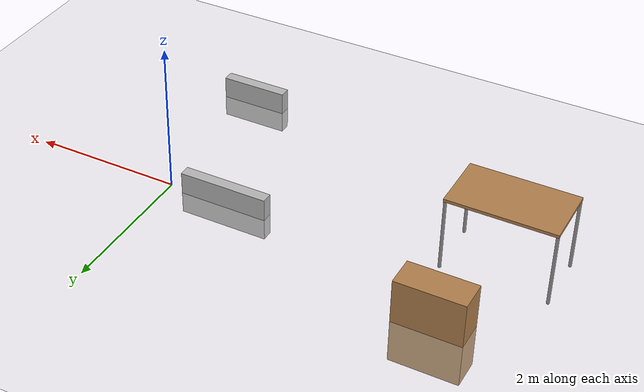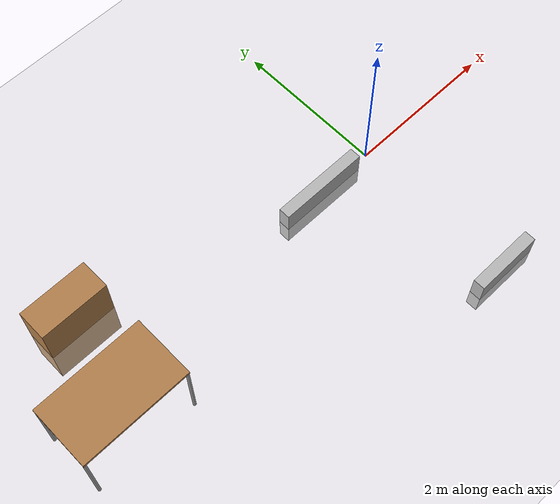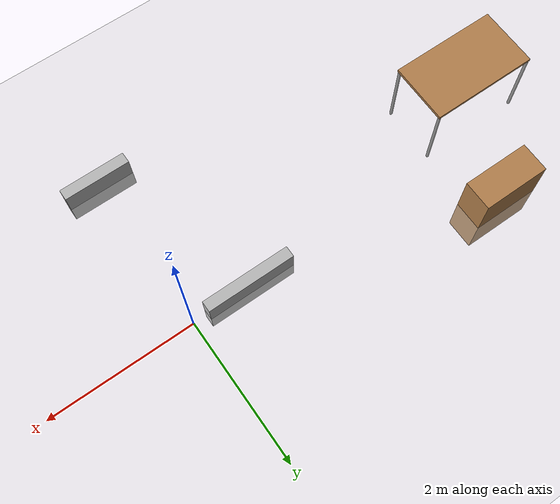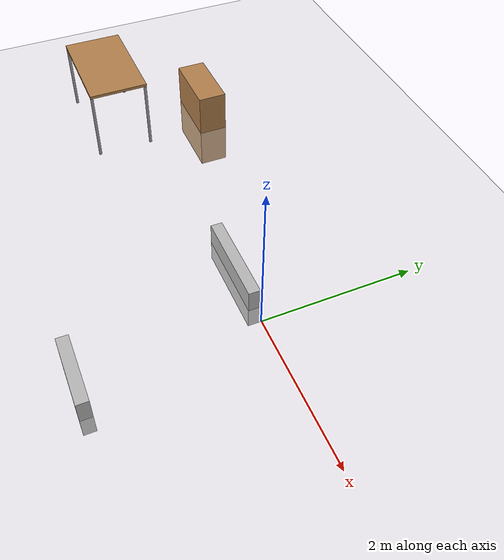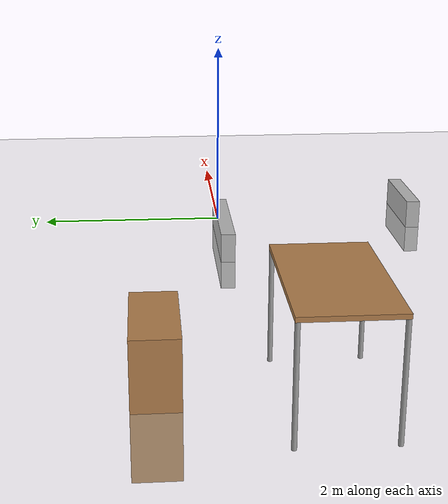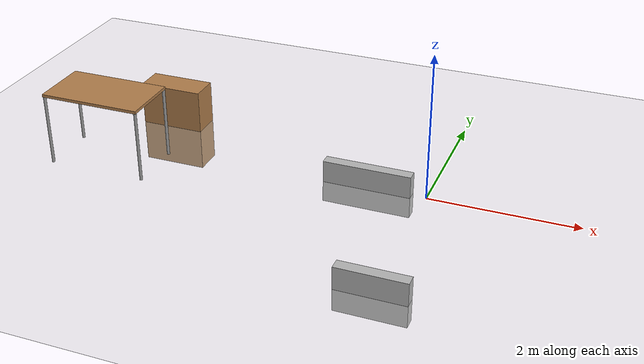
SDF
<sdf version="1.6">
 <world name="default">
  <model name="ground_plane">
   <static>1</static>
   <link name="link">
    <collision name="collision">
     <geometry><plane><normal>0 0 1</normal><size>100 100</size></plane></geometry>
     <surface><friction><ode><mu>100</mu><mu2>50</mu2></ode></friction></surface>
    </collision>
    <visual name="visual">
     <cast_shadows>0</cast_shadows>
     <geometry><plane><normal>0 0 1</normal><size>100 100</size></plane></geometry>
     <material>
      <script><uri>file://media/materials/scripts/gazebo.material</uri><name>Gazebo/Grey</name></script>
     </material>
    </visual>
   </link>
  </model>
  <model name="table">
   <static>0</static>
   <link name="link">
    <collision name="surface">
     <pose>0 0 1 0 -0 0</pose>
     <geometry><box><size>1.5 0.8 0.03</size></box></geometry>
     <surface><friction><ode><mu>0.6</mu><mu2>0.6</mu2></ode></friction></surface>
    </collision>
    <visual name="visual1">
     <pose>0 0 1 0 -0 0</pose>
     <geometry><box><size>1.4 0.8 0.04</size></box></geometry>
     <material>
      <script><uri>file://media/materials/scripts/gazebo.material</uri><name>Gazebo/Wood</name></script>
     </material>
    </visual>
    <collision name="front_left_leg">
     <pose>0.68 0.38 0.5 0 -0 0</pose>
     <geometry><cylinder><radius>0.02</radius><length>1</length></cylinder></geometry>
    </collision>
    <visual name="front_left_leg">
     <pose>0.68 0.38 0.5 0 -0 0</pose>
     <geometry><cylinder><radius>0.02</radius><length>1</length></cylinder></geometry>
     <material>
      <script><uri>file://media/materials/scripts/gazebo.material</uri><name>Gazebo/Grey</name></script>
     </material>
    </visual>
    <collision name="front_right_leg">
     <pose>0.68 -0.38 0.5 0 -0 0</pose>
     <geometry><cylinder><radius>0.02</radius><length>1</length></cylinder></geometry>
    </collision>
    <visual name="front_right_leg">
     <pose>0.68 -0.38 0.5 0 -0 0</pose>
     <geometry><cylinder><radius>0.02</radius><length>1</length></cylinder></geometry>
     <material>
      <script><uri>file://media/materials/scripts/gazebo.material</uri><name>Gazebo/Grey</name></script>
     </material>
    </visual>
    <collision name="back_right_leg">
     <pose>-0.68 -0.38 0.5 0 -0 0</pose>
     <geometry><cylinder><radius>0.02</radius><length>1</length></cylinder></geometry>
    </collision>
    <visual name="back_right_leg">
     <pose>-0.68 -0.38 0.5 0 -0 0</pose>
     <geometry><cylinder><radius>0.02</radius><length>1</length></cylinder></geometry>
     <material>
      <script><uri>file://media/materials/scripts/gazebo.material</uri><name>Gazebo/Grey</name></script>
     </material>
    </visual>
    <collision name="back_left_leg">
     <pose>-0.68 0.38 0.5 0 -0 0</pose>
     <geometry><cylinder><radius>0.02</radius><length>1</length></cylinder></geometry>
    </collision>
    <visual name="back_left_leg">
     <pose>-0.68 0.38 0.5 0 -0 0</pose>
     <geometry><cylinder><radius>0.02</radius><length>1</length></cylinder></geometry>
     <material>
      <script><uri>file://media/materials/scripts/gazebo.material</uri><name>Gazebo/Grey</name></script>
     </material>
    </visual>
    <inertial>
     <inertia><ixx>1</ixx><ixy>0</ixy><ixz>0</ixz><iyy>1</iyy><iyz>0</iyz><izz>1</izz></inertia>
     <mass>1</mass>
    </inertial>
   </link>
   <pose>-4.34248 -0.532954 -9e-06 1e-06 -1e-06 0</pose>
  </model>
  <model name="bookshelf_2">
   <static>1</static>
   <link name="link">
    <inertial><mass>1</mass></inertial>
    <collision name="back">
     <pose>0 0.005 0.6 0 0 0</pose>
     <geometry><box><size>0.9 0.01 1.2</size></box></geometry>
    </collision>
    <visual name="visual">
     <geometry><box><size>0.9 0.4 1.2</size></box></geometry>
     <material>
      <script><uri>file://media/materials/scripts/gazebo.material</uri><name>Gazebo/Wood</name></script>
     </material>
    </visual>
   </link>
   <pose>-4.0 0.8 0 0 -0 0</pose>
  </model>
  <model name="short_wall_1">
   <static>1</static>
   <link name="link">
    <collision name="collision">
     <geometry><box><size>1.2 0.15 0.6</size></box></geometry>
     <surface><friction><ode><mu>1</mu><mu2>1</mu2></ode></friction></surface>
    </collision>
    <visual name="visual"><geometry><box><size>1.2 0.15 0.6</size></box></geometry></visual>
   </link>
   <pose>-0.8 0.0 0 0 -0 0</pose>
  </model>
  <model name="short_wall_2">
   <static>1</static>
   <link name="link">
    <collision name="collision">
     <geometry><box><size>0.9 0.15 0.6</size></box></geometry>
     <surface><friction><ode><mu>1</mu><mu2>1</mu2></ode></friction></surface>
    </collision>
    <visual name="visual"><geometry><box><size>0.9 0.15 0.6</size></box></geometry></visual>
   </link>
   <pose>0.0 -2.2 0 0 -0 0</pose>
  </model>
 </world>
</sdf>
